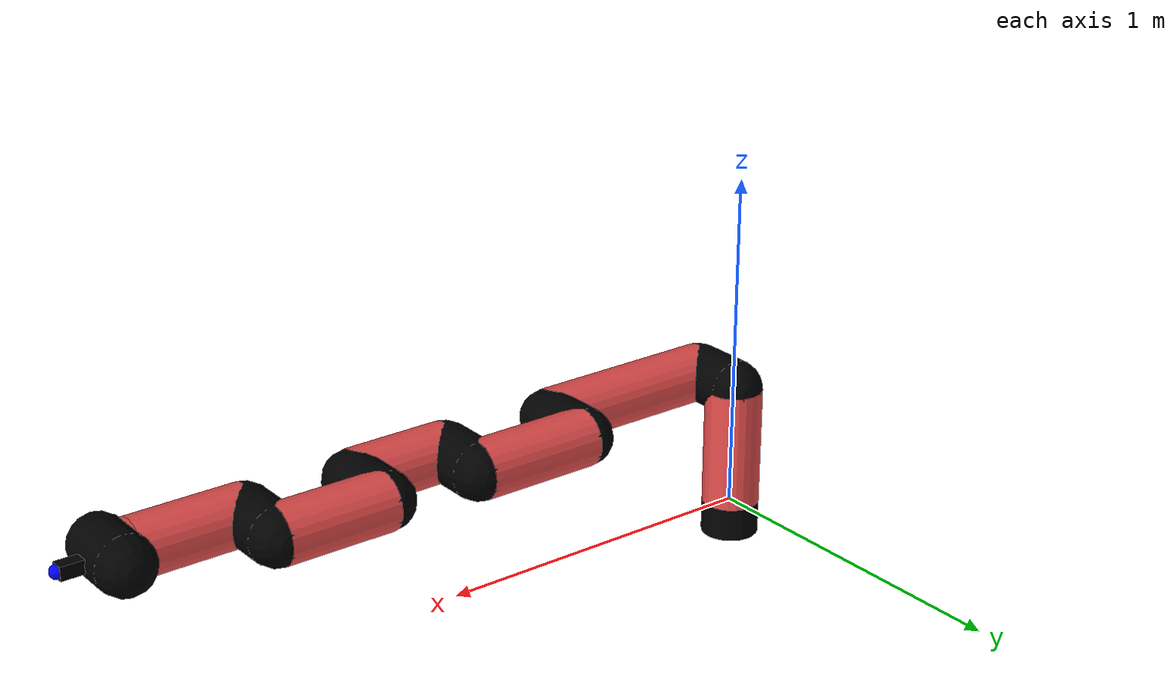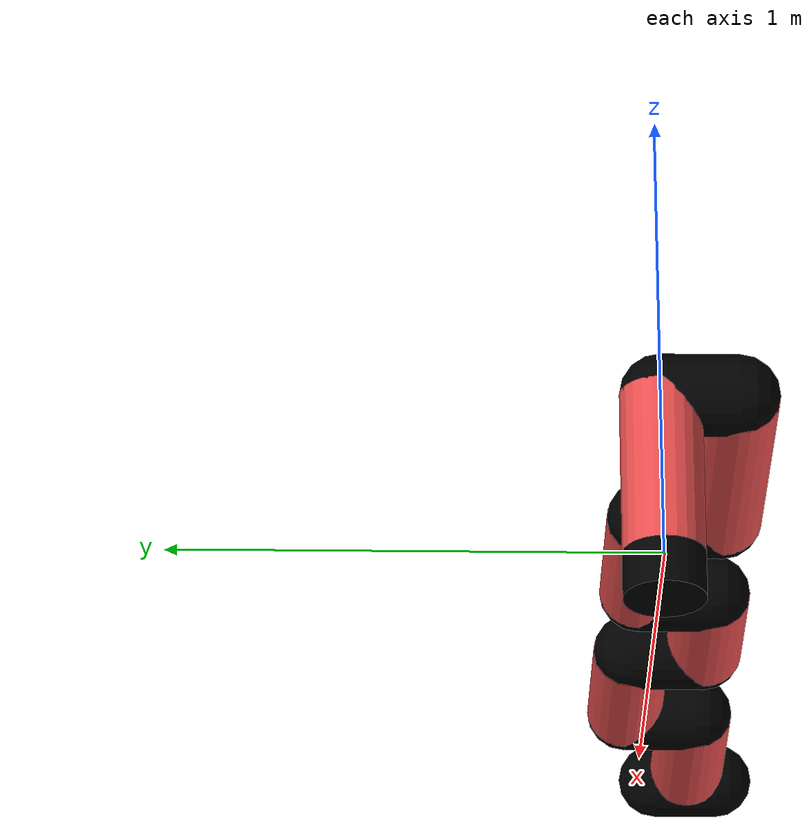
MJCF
<mujoco model="manipulator">
		<compiler angle="degree" coordinate="local" inertiafromgeom="auto" meshdir="meshes/"/>
		<option gravity="0 0 0" integrator="RK4" iterations="30" timestep="0.01"/>

		<default>
		<joint armature="1" limited="true" stiffness="10" damping="15" frictionloss="5.0"/>
		<geom conaffinity="1" condim="3" contype="1" friction=".5 .1 .1" margin="0.002"/>
		<motor ctrllimited="true"/>
		<position ctrllimited="true"/>
		</default>

		<asset>
		<texture builtin="gradient" height="100" rgb1="1.0 1.0 1.0" rgb2="1.0 1.0 1.0" type="skybox" width="100"/>
		<texture builtin="flat" height="32" name="arm_tex" rgb1="0.9 0.3 0.3" type="2d" width="32"/>
		<texture builtin="flat" height="32" name="gripper_tex" rgb1="0.0 0.0 0.0" type="cube" width="32"/>

		<material name="arm_mat" shininess="0.1" specular="0.1" texture="arm_tex"/>
		<material name="gripper_mat" shininess="1" specular="1" texture="gripper_tex"/>
		</asset>

		<worldbody>
		<light cutoff="45" diffuse=".8 .8 .8" dir="0 0.16 -1" directional="false" name="light" pos="0 -2.0 8.0" specular="0.3 0.3 0.3"/>

		<body name="base_link" pos="0 0 -0.1">
		<geom fromto="0 0 0 0 0 0.1" material="arm_mat" name="base_link" rgba="0.0 0.0 0.0 1" size="0.085" type="cylinder"/>
		</body>

		<body name="l1" pos="0 0 0">
<geom fromto="0 0 0 0 0 0.36" material="arm_mat" name="l1" rgba="0.9 0.3 0.3 1" size="0.085" type="cylinder"/>
<geom fromto="0 0 0.36 0 -0.16 0.36" material="arm_mat" name="l1_ex" rgba="0.0 0.0 0.0 1" size="0.085" type="capsule"/>
<joint axis="0 0 1" name="j1" pos="0 0 0" range="-90 90" damping="31.9" frictionloss="9.1"/>

<body name="l2" pos="0 -0.16 0.36">
<geom fromto="0 0 0 0.56 0 0" material="arm_mat" name="l2" rgba="0.9 0.3 0.3 1" size="0.085" type="cylinder"/>
<geom fromto="0.56 0 0 0.56 0.16 0" material="arm_mat" name="l2_ex" rgba="0.0 0.0 0.0 1" size="0.085" type="capsule"/>
<joint axis="0.0 1.0 0.0" name="j2" pos="0 0 0" range="-90 60" damping="36.73" frictionloss="10.27"/>

<body name="l3" pos="0.56 0.16 0">
<geom fromto="0 0 0 0.36 0 0" material="arm_mat" name="l3" rgba="0.9 0.3 0.3 1" size="0.085" type="cylinder"/>
<geom fromto="0.36 0 0 0.36 -0.16 0" material="arm_mat" name="l3_ex" rgba="0.0 0.0 0.0 1" size="0.085" type="capsule"/>
<joint axis="0.0 1.0 0.0" name="j3" pos="0 0 0" range="-30 60" damping="29.72" frictionloss="9.8"/>

<body name="l4" pos="0.36 -0.16 0">
<geom fromto="0 0 0 0.3 0 0" material="arm_mat" name="l4" rgba="0.9 0.3 0.3 1" size="0.085" type="cylinder"/>
<geom fromto="0.3 0 0 0.3 0.16 0" material="arm_mat" name="l4_ex" rgba="0.0 0.0 0.0 1" size="0.085" type="capsule"/>
<joint axis="0.0 1.0 0.0" name="j4" pos="0 0 0" range="-30 60" damping="34.41" frictionloss="9.54"/>

<body name="l5" pos="0.3 0.16 0">
<geom fromto="0 0 0 0.33 0 0" material="arm_mat" name="l5" rgba="0.9 0.3 0.3 1" size="0.085" type="cylinder"/>
<geom fromto="0.33 0 0 0.33 -0.16 0" material="arm_mat" name="l5_ex" rgba="0.0 0.0 0.0 1" size="0.085" type="capsule"/>
<joint axis="0.0 1.0 0.0" name="j5" pos="0 0 0" range="-30 60" damping="21.36" frictionloss="10.04"/>

<body name="l6" pos="0.33 -0.16 0">
<geom fromto="0 0 0 0.33 0 0" material="arm_mat" name="l6" rgba="0.9 0.3 0.3 1" size="0.085" type="cylinder"/>
<joint axis="0.0 1.0 0.0" name="j6" pos="0 0 0" range="-30 60" damping="28.23" frictionloss="11.13"/>

<body name="gripper" pos="0.33 0 0">
<geom fromto="0.05 -0.07 0 0.05 0.07 0" material="gripper_mat" name="gripper" rgba="0.0 0.0 0.0 1" size="0.085" type="capsule"/><joint axis="1 0 0" name="j7" pos="0 0 0" range="-90 90" damping="15" frictionloss="5.0"/><body name="finger" pos="0.1 0 0">
<geom fromto="0 0.0 0 0.1 0.0 0" material="gripper_mat" name="finger" rgba="0.0 0.0 0.0 1" size="0.020 0.06 0.06" type="box"/>
</body>
<site name="current" pos="0.2 0. 0.0" rgba="0. 0. 1.0 1" size="0.02" type="sphere"/>
</body>
</body>
</body>
</body>
</body>
</body>
</body>
</worldbody>
<actuator>
<motor ctrllimited="true" ctrlrange="-1.0 1.0" joint="j1" gear="68.7"/>
<motor ctrllimited="true" ctrlrange="-1.0 1.0" joint="j2" gear="63.3"/>
<motor ctrllimited="true" ctrlrange="-1.0 1.0" joint="j3" gear="58.18"/>
<motor ctrllimited="true" ctrlrange="-1.0 1.0" joint="j4" gear="73.05"/>
<motor ctrllimited="true" ctrlrange="-1.0 1.0" joint="j5" gear="101.41"/>
<motor ctrllimited="true" ctrlrange="-1.0 1.0" joint="j6" gear="85.04"/>
<motor ctrllimited="true" ctrlrange="-1.0 1.0" joint="j7" gear="80"/>
</actuator>
</mujoco>
